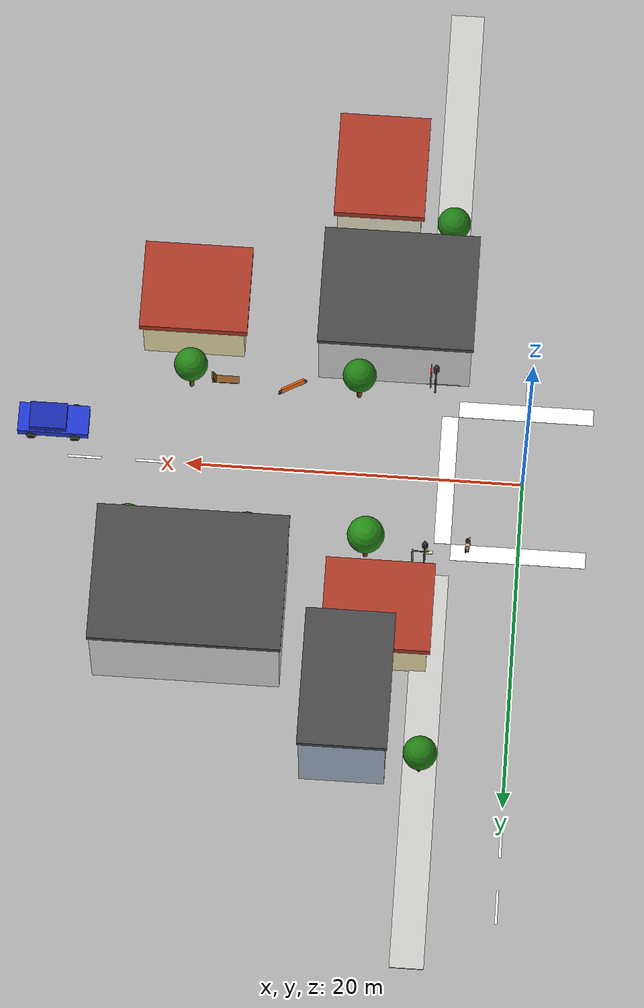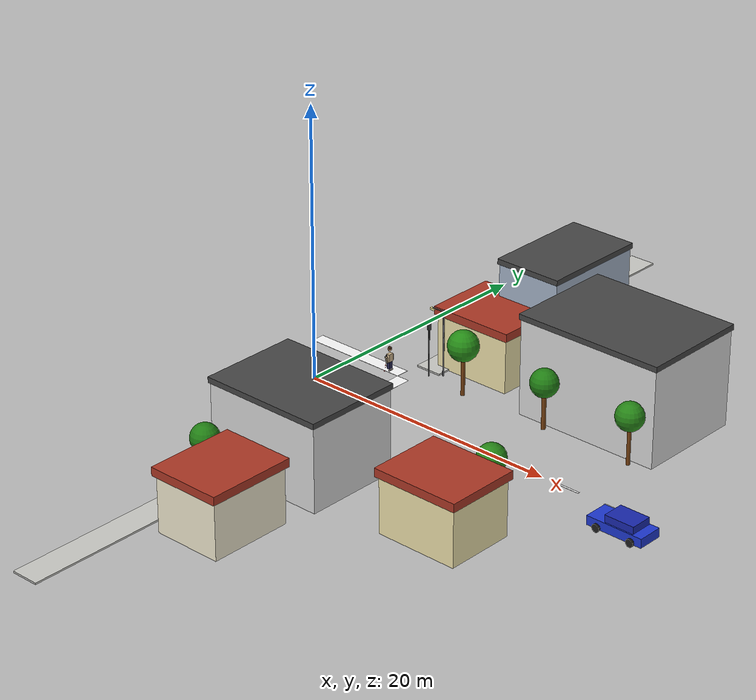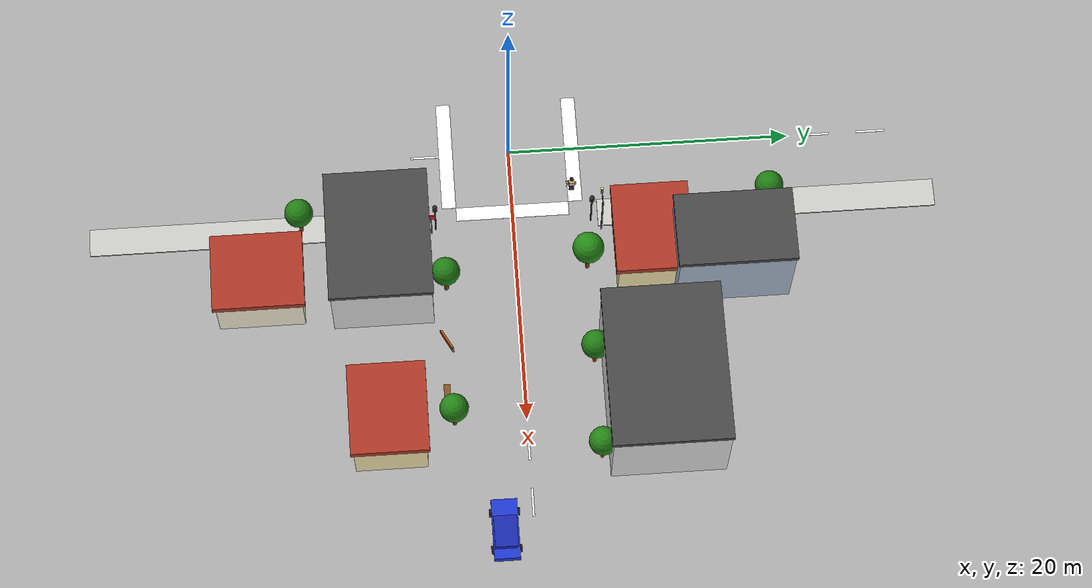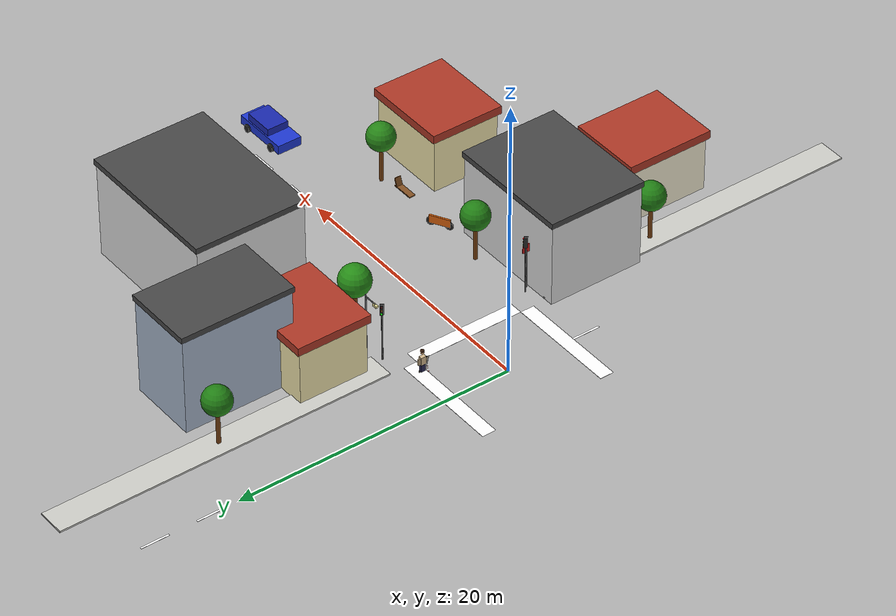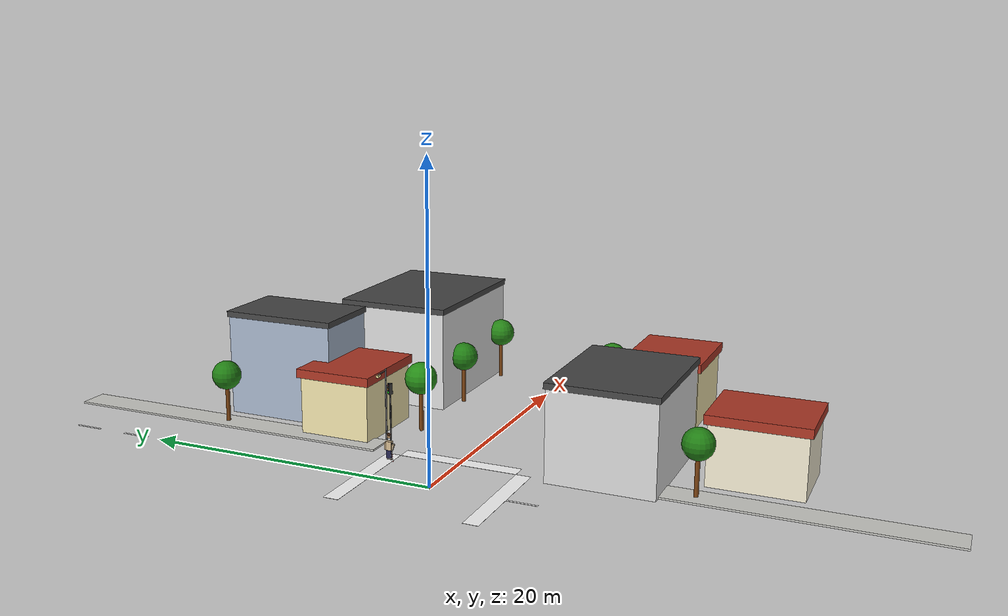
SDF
<sdf version="1.9">
 <world name="smartnav_world">
  <include><uri>https://fuel.gazebosim.org/1.0/OpenRobotics/models/Sun</uri></include>
  <model name="sidewalk_east_S">
   <static>true</static>
   <pose>5 -18 0.06 0 0 0</pose>
   <link name="link">
    <collision name="col"><geometry><box><size>2 24 0.12</size></box></geometry></collision>
    <visual name="vis">
     <geometry><box><size>2 24 0.12</size></box></geometry>
     <material><ambient>0.73 0.73 0.71 1</ambient><diffuse>0.80 0.80 0.78 1</diffuse></material>
    </visual>
   </link>
  </model>
  <model name="sidewalk_east_N">
   <static>true</static>
   <pose>5 18 0.06 0 0 0</pose>
   <link name="link">
    <collision name="col"><geometry><box><size>2 24 0.12</size></box></geometry></collision>
    <visual name="vis">
     <geometry><box><size>2 24 0.12</size></box></geometry>
     <material><ambient>0.73 0.73 0.71 1</ambient><diffuse>0.80 0.80 0.78 1</diffuse></material>
    </visual>
   </link>
  </model>
  <model name="dm_e1">
   <static>true</static>
   <pose>6  0 0.05 0 0 0</pose>
   <link name="l">
    <visual name="v">
     <geometry><box><size>2 0.15 0.01</size></box></geometry>
     <material><ambient>1 1 1 1</ambient><diffuse>1 1 1 1</diffuse></material>
    </visual>
   </link>
  </model>
  <model name="dm_e2">
   <static>true</static>
   <pose>10 0 0.05 0 0 0</pose>
   <link name="l">
    <visual name="v">
     <geometry><box><size>2 0.15 0.01</size></box></geometry>
     <material><ambient>1 1 1 1</ambient><diffuse>1 1 1 1</diffuse></material>
    </visual>
   </link>
  </model>
  <model name="dm_e3">
   <static>true</static>
   <pose>14 0 0.05 0 0 0</pose>
   <link name="l">
    <visual name="v">
     <geometry><box><size>2 0.15 0.01</size></box></geometry>
     <material><ambient>1 1 1 1</ambient><diffuse>1 1 1 1</diffuse></material>
    </visual>
   </link>
  </model>
  <model name="dm_e4">
   <static>true</static>
   <pose>18 0 0.05 0 0 0</pose>
   <link name="l">
    <visual name="v">
     <geometry><box><size>2 0.15 0.01</size></box></geometry>
     <material><ambient>1 1 1 1</ambient><diffuse>1 1 1 1</diffuse></material>
    </visual>
   </link>
  </model>
  <model name="dm_e5">
   <static>true</static>
   <pose>22 0 0.05 0 0 0</pose>
   <link name="l">
    <visual name="v">
     <geometry><box><size>2 0.15 0.01</size></box></geometry>
     <material><ambient>1 1 1 1</ambient><diffuse>1 1 1 1</diffuse></material>
    </visual>
   </link>
  </model>
  <model name="dm_e6">
   <static>true</static>
   <pose>26 0 0.05 0 0 0</pose>
   <link name="l">
    <visual name="v">
     <geometry><box><size>2 0.15 0.01</size></box></geometry>
     <material><ambient>1 1 1 1</ambient><diffuse>1 1 1 1</diffuse></material>
    </visual>
   </link>
  </model>
  <model name="dc_s6">
   <static>true</static>
   <pose>0  -6 0.05 0 0 0</pose>
   <link name="l">
    <visual name="v">
     <geometry><box><size>0.15 2 0.01</size></box></geometry>
     <material><ambient>1 1 1 1</ambient><diffuse>1 1 1 1</diffuse></material>
    </visual>
   </link>
  </model>
  <model name="dc_n1">
   <static>true</static>
   <pose>0  6 0.05 0 0 0</pose>
   <link name="l">
    <visual name="v">
     <geometry><box><size>0.15 2 0.01</size></box></geometry>
     <material><ambient>1 1 1 1</ambient><diffuse>1 1 1 1</diffuse></material>
    </visual>
   </link>
  </model>
  <model name="dc_n2">
   <static>true</static>
   <pose>0 10 0.05 0 0 0</pose>
   <link name="l">
    <visual name="v">
     <geometry><box><size>0.15 2 0.01</size></box></geometry>
     <material><ambient>1 1 1 1</ambient><diffuse>1 1 1 1</diffuse></material>
    </visual>
   </link>
  </model>
  <model name="dc_n3">
   <static>true</static>
   <pose>0 14 0.05 0 0 0</pose>
   <link name="l">
    <visual name="v">
     <geometry><box><size>0.15 2 0.01</size></box></geometry>
     <material><ambient>1 1 1 1</ambient><diffuse>1 1 1 1</diffuse></material>
    </visual>
   </link>
  </model>
  <model name="dc_n4">
   <static>true</static>
   <pose>0 18 0.05 0 0 0</pose>
   <link name="l">
    <visual name="v">
     <geometry><box><size>0.15 2 0.01</size></box></geometry>
     <material><ambient>1 1 1 1</ambient><diffuse>1 1 1 1</diffuse></material>
    </visual>
   </link>
  </model>
  <model name="dc_n5">
   <static>true</static>
   <pose>0 22 0.05 0 0 0</pose>
   <link name="l">
    <visual name="v">
     <geometry><box><size>0.15 2 0.01</size></box></geometry>
     <material><ambient>1 1 1 1</ambient><diffuse>1 1 1 1</diffuse></material>
    </visual>
   </link>
  </model>
  <model name="dc_n6">
   <static>true</static>
   <pose>0 26 0.05 0 0 0</pose>
   <link name="l">
    <visual name="v">
     <geometry><box><size>0.15 2 0.01</size></box></geometry>
     <material><ambient>1 1 1 1</ambient><diffuse>1 1 1 1</diffuse></material>
    </visual>
   </link>
  </model>
  <model name="crosswalk_east">
   <static>true</static>
   <pose>4.5  0   0.05 0 0 0</pose>
   <link name="l">
    <visual name="v">
     <geometry><box><size>1 8 0.01</size></box></geometry>
     <material><ambient>0.95 0.95 0.95 1</ambient><diffuse>1 1 1 1</diffuse></material>
    </visual>
   </link>
  </model>
  <model name="crosswalk_north">
   <static>true</static>
   <pose>0    4.5 0.05 0 0 0</pose>
   <link name="l">
    <visual name="v">
     <geometry><box><size>8 1 0.01</size></box></geometry>
     <material><ambient>0.95 0.95 0.95 1</ambient><diffuse>1 1 1 1</diffuse></material>
    </visual>
   </link>
  </model>
  <model name="crosswalk_south">
   <static>true</static>
   <pose>0   -4.5 0.05 0 0 0</pose>
   <link name="l">
    <visual name="v">
     <geometry><box><size>8 1 0.01</size></box></geometry>
     <material><ambient>0.95 0.95 0.95 1</ambient><diffuse>1 1 1 1</diffuse></material>
    </visual>
   </link>
  </model>
  <model name="house_n3">
   <static>true</static>
   <pose>8 9.5 0 0 0 0</pose>
   <link name="walls">
    <pose>0 0 2 0 0 0</pose>
    <collision name="col"><geometry><box><size>6 5 4</size></box></geometry></collision>
    <visual name="vis">
     <geometry><box><size>6 5 4</size></box></geometry>
     <material><ambient>0.92 0.87 0.65 1</ambient><diffuse>0.95 0.90 0.68 1</diffuse></material>
    </visual>
   </link>
   <link name="roof">
    <pose>0 0 4.3 0 0 0</pose>
    <visual name="vis">
     <geometry><box><size>6.4 5.4 0.6</size></box></geometry>
     <material><ambient>0.62 0.18 0.12 1</ambient><diffuse>0.68 0.22 0.15 1</diffuse></material>
    </visual>
   </link>
  </model>
  <model name="building_n2">
   <static>true</static>
   <pose>19 9.5 0 0 0 0</pose>
   <link name="walls">
    <pose>0 0 3.5 0 0 0</pose>
    <collision name="col"><geometry><box><size>11 8 7</size></box></geometry></collision>
    <visual name="vis">
     <geometry><box><size>11 8 7</size></box></geometry>
     <material><ambient>0.83 0.83 0.83 1</ambient><diffuse>0.87 0.87 0.87 1</diffuse></material>
    </visual>
   </link>
   <link name="roof">
    <pose>0 0 7.2 0 0 0</pose>
    <visual name="vis">
     <geometry><box><size>11.2 8.2 0.4</size></box></geometry>
     <material><ambient>0.25 0.25 0.25 1</ambient><diffuse>0.28 0.28 0.28 1</diffuse></material>
    </visual>
   </link>
  </model>
  <model name="building_s2">
   <static>true</static>
   <pose>8 -9.5 0 0 0 0</pose>
   <link name="walls">
    <pose>0 0 3 0 0 0</pose>
    <collision name="col"><geometry><box><size>9 7 6</size></box></geometry></collision>
    <visual name="vis">
     <geometry><box><size>9 7 6</size></box></geometry>
     <material><ambient>0.82 0.82 0.82 1</ambient><diffuse>0.86 0.86 0.86 1</diffuse></material>
    </visual>
   </link>
   <link name="roof">
    <pose>0 0 6.2 0 0 0</pose>
    <visual name="vis">
     <geometry><box><size>9.2 7.2 0.4</size></box></geometry>
     <material><ambient>0.25 0.25 0.25 1</ambient><diffuse>0.28 0.28 0.28 1</diffuse></material>
    </visual>
   </link>
  </model>
  <model name="house_s3">
   <static>true</static>
   <pose>20 -9.5 0 0 0 0</pose>
   <link name="walls">
    <pose>0 0 2 0 0 0</pose>
    <collision name="col"><geometry><box><size>6 5 4</size></box></geometry></collision>
    <visual name="vis">
     <geometry><box><size>6 5 4</size></box></geometry>
     <material><ambient>0.92 0.87 0.65 1</ambient><diffuse>0.95 0.90 0.68 1</diffuse></material>
    </visual>
   </link>
   <link name="roof">
    <pose>0 0 4.3 0 0 0</pose>
    <visual name="vis">
     <geometry><box><size>6.4 5.4 0.6</size></box></geometry>
     <material><ambient>0.62 0.18 0.12 1</ambient><diffuse>0.68 0.22 0.15 1</diffuse></material>
    </visual>
   </link>
  </model>
  <model name="house_e1">
   <static>true</static>
   <pose>9.5 -18 0 0 0 0</pose>
   <link name="walls">
    <pose>0 0 2 0 0 0</pose>
    <collision name="col"><geometry><box><size>5 6 4</size></box></geometry></collision>
    <visual name="vis">
     <geometry><box><size>5 6 4</size></box></geometry>
     <material><ambient>0.94 0.90 0.80 1</ambient><diffuse>0.96 0.93 0.83 1</diffuse></material>
    </visual>
   </link>
   <link name="roof">
    <pose>0 0 4.3 0 0 0</pose>
    <visual name="vis">
     <geometry><box><size>5.4 6.4 0.6</size></box></geometry>
     <material><ambient>0.62 0.18 0.12 1</ambient><diffuse>0.68 0.22 0.15 1</diffuse></material>
    </visual>
   </link>
  </model>
  <model name="building_e1">
   <static>true</static>
   <pose>9.5 15 0 0 0 0</pose>
   <link name="walls">
    <pose>0 0 3.5 0 0 0</pose>
    <collision name="col"><geometry><box><size>5 8 7</size></box></geometry></collision>
    <visual name="vis">
     <geometry><box><size>5 8 7</size></box></geometry>
     <material><ambient>0.62 0.68 0.75 1</ambient><diffuse>0.66 0.72 0.80 1</diffuse></material>
    </visual>
   </link>
   <link name="roof">
    <pose>0 0 7.2 0 0 0</pose>
    <visual name="vis">
     <geometry><box><size>5.2 8.2 0.4</size></box></geometry>
     <material><ambient>0.25 0.25 0.25 1</ambient><diffuse>0.28 0.28 0.28 1</diffuse></material>
    </visual>
   </link>
  </model>
  <model name="tree_n4">
   <static>true</static>
   <pose>9 5 0 0 0 0</pose>
   <link name="trunk">
    <pose>0 0 1.3 0 0 0</pose>
    <collision name="col">
     <geometry><cylinder><radius>0.14</radius><length>2.6</length></cylinder></geometry>
    </collision>
    <visual name="vis">
     <geometry><cylinder><radius>0.14</radius><length>2.6</length></cylinder></geometry>
     <material><ambient>0.42 0.22 0.06 1</ambient><diffuse>0.48 0.26 0.07 1</diffuse></material>
    </visual>
   </link>
   <link name="canopy">
    <pose>0 0 3.7 0 0 0</pose>
    <collision name="col"><geometry><sphere><radius>1.1</radius></sphere></geometry></collision>
    <visual name="vis">
     <geometry><sphere><radius>1.1</radius></sphere></geometry>
     <material><ambient>0.12 0.48 0.08 1</ambient><diffuse>0.15 0.55 0.09 1</diffuse></material>
    </visual>
   </link>
  </model>
  <model name="tree_n5">
   <static>true</static>
   <pose>16 5 0 0 0 0</pose>
   <link name="trunk">
    <pose>0 0 1.2 0 0 0</pose>
    <collision name="col">
     <geometry><cylinder><radius>0.15</radius><length>2.4</length></cylinder></geometry>
    </collision>
    <visual name="vis">
     <geometry><cylinder><radius>0.15</radius><length>2.4</length></cylinder></geometry>
     <material><ambient>0.42 0.22 0.06 1</ambient><diffuse>0.48 0.26 0.07 1</diffuse></material>
    </visual>
   </link>
   <link name="canopy">
    <pose>0 0 3.4 0 0 0</pose>
    <collision name="col"><geometry><sphere><radius>1.0</radius></sphere></geometry></collision>
    <visual name="vis">
     <geometry><sphere><radius>1.0</radius></sphere></geometry>
     <material><ambient>0.10 0.42 0.07 1</ambient><diffuse>0.13 0.50 0.08 1</diffuse></material>
    </visual>
   </link>
  </model>
  <model name="tree_n6">
   <static>true</static>
   <pose>23 5 0 0 0 0</pose>
   <link name="trunk">
    <pose>0 0 1.25 0 0 0</pose>
    <collision name="col">
     <geometry><cylinder><radius>0.13</radius><length>2.5</length></cylinder></geometry>
    </collision>
    <visual name="vis">
     <geometry><cylinder><radius>0.13</radius><length>2.5</length></cylinder></geometry>
     <material><ambient>0.42 0.22 0.06 1</ambient><diffuse>0.48 0.26 0.07 1</diffuse></material>
    </visual>
   </link>
   <link name="canopy">
    <pose>0 0 3.5 0 0 0</pose>
    <collision name="col"><geometry><sphere><radius>1.0</radius></sphere></geometry></collision>
    <visual name="vis">
     <geometry><sphere><radius>1.0</radius></sphere></geometry>
     <material><ambient>0.12 0.45 0.08 1</ambient><diffuse>0.15 0.52 0.09 1</diffuse></material>
    </visual>
   </link>
  </model>
  <model name="tree_s3">
   <static>true</static>
   <pose>10 -5 0 0 0 0</pose>
   <link name="trunk">
    <pose>0 0 1.2 0 0 0</pose>
    <collision name="col">
     <geometry><cylinder><radius>0.15</radius><length>2.4</length></cylinder></geometry>
    </collision>
    <visual name="vis">
     <geometry><cylinder><radius>0.15</radius><length>2.4</length></cylinder></geometry>
     <material><ambient>0.42 0.22 0.06 1</ambient><diffuse>0.48 0.26 0.07 1</diffuse></material>
    </visual>
   </link>
   <link name="canopy">
    <pose>0 0 3.4 0 0 0</pose>
    <collision name="col"><geometry><sphere><radius>1.0</radius></sphere></geometry></collision>
    <visual name="vis">
     <geometry><sphere><radius>1.0</radius></sphere></geometry>
     <material><ambient>0.10 0.42 0.07 1</ambient><diffuse>0.13 0.50 0.08 1</diffuse></material>
    </visual>
   </link>
  </model>
  <model name="tree_s4">
   <static>true</static>
   <pose>20 -5 0 0 0 0</pose>
   <link name="trunk">
    <pose>0 0 1.25 0 0 0</pose>
    <collision name="col">
     <geometry><cylinder><radius>0.13</radius><length>2.5</length></cylinder></geometry>
    </collision>
    <visual name="vis">
     <geometry><cylinder><radius>0.13</radius><length>2.5</length></cylinder></geometry>
     <material><ambient>0.42 0.22 0.06 1</ambient><diffuse>0.48 0.26 0.07 1</diffuse></material>
    </visual>
   </link>
   <link name="canopy">
    <pose>0 0 3.5 0 0 0</pose>
    <collision name="col"><geometry><sphere><radius>1.0</radius></sphere></geometry></collision>
    <visual name="vis">
     <geometry><sphere><radius>1.0</radius></sphere></geometry>
     <material><ambient>0.12 0.45 0.08 1</ambient><diffuse>0.15 0.52 0.09 1</diffuse></material>
    </visual>
   </link>
  </model>
  <model name="tree_c1">
   <static>true</static>
   <pose>5 -15 0 0 0 0</pose>
   <link name="trunk">
    <pose>0 0 1.2 0 0 0</pose>
    <collision name="col">
     <geometry><cylinder><radius>0.14</radius><length>2.4</length></cylinder></geometry>
    </collision>
    <visual name="vis">
     <geometry><cylinder><radius>0.14</radius><length>2.4</length></cylinder></geometry>
     <material><ambient>0.42 0.22 0.06 1</ambient><diffuse>0.48 0.26 0.07 1</diffuse></material>
    </visual>
   </link>
   <link name="canopy">
    <pose>0 0 3.4 0 0 0</pose>
    <collision name="col"><geometry><sphere><radius>1.0</radius></sphere></geometry></collision>
    <visual name="vis">
     <geometry><sphere><radius>1.0</radius></sphere></geometry>
     <material><ambient>0.10 0.42 0.07 1</ambient><diffuse>0.13 0.50 0.08 1</diffuse></material>
    </visual>
   </link>
  </model>
  <model name="tree_c3">
   <static>true</static>
   <pose>5 18 0 0 0 0</pose>
   <link name="trunk">
    <pose>0 0 1.2 0 0 0</pose>
    <collision name="col">
     <geometry><cylinder><radius>0.14</radius><length>2.4</length></cylinder></geometry>
    </collision>
    <visual name="vis">
     <geometry><cylinder><radius>0.14</radius><length>2.4</length></cylinder></geometry>
     <material><ambient>0.42 0.22 0.06 1</ambient><diffuse>0.48 0.26 0.07 1</diffuse></material>
    </visual>
   </link>
   <link name="canopy">
    <pose>0 0 3.4 0 0 0</pose>
    <collision name="col"><geometry><sphere><radius>1.0</radius></sphere></geometry></collision>
    <visual name="vis">
     <geometry><sphere><radius>1.0</radius></sphere></geometry>
     <material><ambient>0.10 0.42 0.07 1</ambient><diffuse>0.13 0.50 0.08 1</diffuse></material>
    </visual>
   </link>
  </model>
  <model name="lamp_NE">
   <static>true</static>
   <pose>6.2 6.2 0 0 0 3.1416</pose>
   <link name="pole">
    <visual name="pole">
     <pose>0 0 2.5 0 0 0</pose>
     <geometry><cylinder><radius>0.055</radius><length>5.0</length></cylinder></geometry>
     <material><ambient>0.40 0.40 0.42 1</ambient><diffuse>0.45 0.45 0.47 1</diffuse></material>
    </visual>
    <visual name="arm">
     <pose>0.5 0 4.85 0 1.5708 0</pose>
     <geometry><cylinder><radius>0.035</radius><length>1.0</length></cylinder></geometry>
     <material><ambient>0.40 0.40 0.42 1</ambient><diffuse>0.45 0.45 0.47 1</diffuse></material>
    </visual>
    <visual name="head">
     <pose>1.0 0 4.75 0 0 0</pose>
     <geometry><box><size>0.38 0.18 0.14</size></box></geometry>
     <material>
      <ambient>0.95 0.90 0.55 1</ambient>
      <diffuse>1.0 0.95 0.65 1</diffuse>
      <emissive>0.5 0.45 0.15 1</emissive>
     </material>
    </visual>
    <collision name="col">
     <pose>0 0 2.5 0 0 0</pose>
     <geometry><cylinder><radius>0.055</radius><length>5.0</length></cylinder></geometry>
    </collision>
   </link>
  </model>
  <model name="lamp_SE">
   <static>true</static>
   <pose>6.2 -6.2 0 0 0 3.1416</pose>
   <link name="pole">
    <visual name="pole">
     <pose>0 0 2.5 0 0 0</pose>
     <geometry><cylinder><radius>0.055</radius><length>5.0</length></cylinder></geometry>
     <material><ambient>0.40 0.40 0.42 1</ambient><diffuse>0.45 0.45 0.47 1</diffuse></material>
    </visual>
    <visual name="arm">
     <pose>0.5 0 4.85 0 1.5708 0</pose>
     <geometry><cylinder><radius>0.035</radius><length>1.0</length></cylinder></geometry>
     <material><ambient>0.40 0.40 0.42 1</ambient><diffuse>0.45 0.45 0.47 1</diffuse></material>
    </visual>
    <visual name="head">
     <pose>1.0 0 4.75 0 0 0</pose>
     <geometry><box><size>0.38 0.18 0.14</size></box></geometry>
     <material>
      <ambient>0.95 0.90 0.55 1</ambient>
      <diffuse>1.0 0.95 0.65 1</diffuse>
      <emissive>0.5 0.45 0.15 1</emissive>
     </material>
    </visual>
    <collision name="col">
     <pose>0 0 2.5 0 0 0</pose>
     <geometry><cylinder><radius>0.055</radius><length>5.0</length></cylinder></geometry>
    </collision>
   </link>
  </model>
  <model name="tl_NE">
   <static>true</static>
   <pose>5.5 5.5 0 0 0 -0.7854</pose>
   <link name="link">
    <visual name="pole">
     <pose>0 0 1.9 0 0 0</pose>
     <geometry><cylinder><radius>0.05</radius><length>3.8</length></cylinder></geometry>
     <material><ambient>0.28 0.28 0.28 1</ambient><diffuse>0.32 0.32 0.32 1</diffuse></material>
    </visual>
    <visual name="box">
     <pose>0 0 3.9 0 0 0</pose>
     <geometry><box><size>0.24 0.24 0.72</size></box></geometry>
     <material><ambient>0.12 0.12 0.12 1</ambient><diffuse>0.18 0.18 0.18 1</diffuse></material>
    </visual>
    <visual name="red">
     <pose>-0.13 0 4.15 0 1.5708 0</pose>
     <geometry><sphere><radius>0.068</radius></sphere></geometry>
     <material><ambient>0.25 0.05 0.05 1</ambient><diffuse>0.30 0.06 0.06 1</diffuse></material>
    </visual>
    <visual name="orange">
     <pose>-0.13 0 3.90 0 1.5708 0</pose>
     <geometry><sphere><radius>0.068</radius></sphere></geometry>
     <material><ambient>0.25 0.12 0.00 1</ambient><diffuse>0.30 0.14 0.00 1</diffuse></material>
    </visual>
    <visual name="green">
     <pose>-0.13 0 3.65 0 1.5708 0</pose>
     <geometry><sphere><radius>0.068</radius></sphere></geometry>
     <material>
      <ambient>0.05 0.85 0.05 1</ambient>
      <diffuse>0.08 0.95 0.08 1</diffuse>
      <emissive>0 0.65 0 1</emissive>
     </material>
    </visual>
    <collision name="col">
     <pose>0 0 1.9 0 0 0</pose>
     <geometry><cylinder><radius>0.05</radius><length>3.8</length></cylinder></geometry>
    </collision>
   </link>
  </model>
  <model name="tl_SE">
   <static>true</static>
   <pose>5.5 -5.5 0 0 0 -2.3562</pose>
   <link name="link">
    <visual name="pole">
     <pose>0 0 1.9 0 0 0</pose>
     <geometry><cylinder><radius>0.05</radius><length>3.8</length></cylinder></geometry>
     <material><ambient>0.28 0.28 0.28 1</ambient><diffuse>0.32 0.32 0.32 1</diffuse></material>
    </visual>
    <visual name="box">
     <pose>0 0 3.9 0 0 0</pose>
     <geometry><box><size>0.24 0.24 0.72</size></box></geometry>
     <material><ambient>0.12 0.12 0.12 1</ambient><diffuse>0.18 0.18 0.18 1</diffuse></material>
    </visual>
    <visual name="red">
     <pose>-0.13 0 4.15 0 1.5708 0</pose>
     <geometry><sphere><radius>0.068</radius></sphere></geometry>
     <material>
      <ambient>0.90 0.05 0.05 1</ambient>
      <diffuse>1.0 0.08 0.08 1</diffuse>
      <emissive>0.80 0 0 1</emissive>
     </material>
    </visual>
    <visual name="orange">
     <pose>-0.13 0 3.90 0 1.5708 0</pose>
     <geometry><sphere><radius>0.068</radius></sphere></geometry>
     <material><ambient>0.25 0.12 0.00 1</ambient><diffuse>0.30 0.14 0.00 1</diffuse></material>
    </visual>
    <visual name="green">
     <pose>-0.13 0 3.65 0 1.5708 0</pose>
     <geometry><sphere><radius>0.068</radius></sphere></geometry>
     <material><ambient>0.05 0.22 0.05 1</ambient><diffuse>0.08 0.28 0.08 1</diffuse></material>
    </visual>
    <collision name="col">
     <pose>0 0 1.9 0 0 0</pose>
     <geometry><cylinder><radius>0.05</radius><length>3.8</length></cylinder></geometry>
    </collision>
   </link>
  </model>
  <model name="sign_1">
   <static>true</static>
   <pose>5.8 -5.8 0 0 0 0</pose>
   <link name="link">
    <visual name="pole">
     <pose>0 0 1.5 0 0 0</pose>
     <geometry><cylinder><radius>0.04</radius><length>3.0</length></cylinder></geometry>
     <material><ambient>0.70 0.70 0.70 1</ambient><diffuse>0.75 0.75 0.75 1</diffuse></material>
    </visual>
    <visual name="panel">
     <pose>0 0 3.1 0 0 0</pose>
     <geometry><box><size>0.06 0.60 0.60</size></box></geometry>
     <material><ambient>0.80 0.10 0.10 1</ambient><diffuse>0.85 0.12 0.12 1</diffuse></material>
    </visual>
    <collision name="col">
     <pose>0 0 1.5 0 0 0</pose>
     <geometry><cylinder><radius>0.04</radius><length>3.0</length></cylinder></geometry>
    </collision>
   </link>
  </model>
  <model name="bike_1">
   <static>true</static>
   <pose>14 -5.2 0.35 0 0 0.5</pose>
   <link name="link">
    <visual name="frame">
     <geometry><box><size>1.50 0.12 0.60</size></box></geometry>
     <material><ambient>0.80 0.35 0.05 1</ambient><diffuse>0.88 0.40 0.06 1</diffuse></material>
    </visual>
    <visual name="wf">
     <pose>0.65 0 -0.18 1.5708 0 0</pose>
     <geometry><cylinder><radius>0.30</radius><length>0.06</length></cylinder></geometry>
     <material><ambient>0.08 0.08 0.08 1</ambient><diffuse>0.12 0.12 0.12 1</diffuse></material>
    </visual>
    <visual name="wr">
     <pose>-0.65 0 -0.18 1.5708 0 0</pose>
     <geometry><cylinder><radius>0.30</radius><length>0.06</length></cylinder></geometry>
     <material><ambient>0.08 0.08 0.08 1</ambient><diffuse>0.12 0.12 0.12 1</diffuse></material>
    </visual>
    <collision name="col"><geometry><box><size>1.50 0.12 0.90</size></box></geometry></collision>
   </link>
  </model>
  <model name="bench_2">
   <static>true</static>
   <pose>18 -5.4 0.22 0 0 3.1416</pose>
   <link name="link">
    <visual name="seat">
     <geometry><box><size>1.6 0.45 0.08</size></box></geometry>
     <material><ambient>0.45 0.28 0.12 1</ambient><diffuse>0.52 0.32 0.14 1</diffuse></material>
    </visual>
    <visual name="back">
     <pose>-0.7 0 0.30 0 -0.35 0</pose>
     <geometry><box><size>0.08 0.45 0.60</size></box></geometry>
     <material><ambient>0.45 0.28 0.12 1</ambient><diffuse>0.52 0.32 0.14 1</diffuse></material>
    </visual>
    <collision name="col"><geometry><box><size>1.6 0.45 0.70</size></box></geometry></collision>
   </link>
  </model>
  <model name="moving_car_B">
   <pose>28 -2 0.54 0 0 3.1416</pose>
   <link name="chassis">
    <inertial>
     <mass>1200</mass>
     <inertia><ixx>400</ixx><ixy>0</ixy><ixz>0</ixz><iyy>1800</iyy><iyz>0</iyz><izz>1800</izz></inertia>
    </inertial>
    <visual name="body">
     <geometry><box><size>4.2 1.8 0.65</size></box></geometry>
     <material>
      <ambient>0.10 0.18 0.75 1</ambient>
      <diffuse>0.12 0.22 0.82 1</diffuse>
      <specular>0.1 0.1 0.3 1</specular>
     </material>
    </visual>
    <visual name="cabin">
     <pose>-0.3 0 0.58 0 0 0</pose>
     <geometry><box><size>2.2 1.6 0.52</size></box></geometry>
     <material><ambient>0.08 0.14 0.62 1</ambient><diffuse>0.10 0.16 0.68 1</diffuse></material>
    </visual>
    <visual name="wfl">
     <pose>1.3  0.95 -0.22 1.5708 0 0</pose>
     <geometry><cylinder><radius>0.28</radius><length>0.20</length></cylinder></geometry>
     <material><ambient>0.08 0.08 0.08 1</ambient><diffuse>0.12 0.12 0.12 1</diffuse></material>
    </visual>
    <visual name="wfr">
     <pose>1.3 -0.95 -0.22 1.5708 0 0</pose>
     <geometry><cylinder><radius>0.28</radius><length>0.20</length></cylinder></geometry>
     <material><ambient>0.08 0.08 0.08 1</ambient><diffuse>0.12 0.12 0.12 1</diffuse></material>
    </visual>
    <visual name="wrl">
     <pose>-1.3  0.95 -0.22 1.5708 0 0</pose>
     <geometry><cylinder><radius>0.28</radius><length>0.20</length></cylinder></geometry>
     <material><ambient>0.08 0.08 0.08 1</ambient><diffuse>0.12 0.12 0.12 1</diffuse></material>
    </visual>
    <visual name="wrr">
     <pose>-1.3 -0.95 -0.22 1.5708 0 0</pose>
     <geometry><cylinder><radius>0.28</radius><length>0.20</length></cylinder></geometry>
     <material><ambient>0.08 0.08 0.08 1</ambient><diffuse>0.12 0.12 0.12 1</diffuse></material>
    </visual>
    <collision name="col"><geometry><box><size>4.2 1.8 1.0</size></box></geometry></collision>
   </link>
   <plugin filename="gz-sim-velocity-control-system" name="gz::sim::systems::VelocityControl">
    <initial_linear>7.0 0 0</initial_linear>
    <initial_angular>0 0 0</initial_angular>
   </plugin>
  </model>
  <model name="blind_person">
   <static>true</static>
   <pose>3 4.3 0 0 0 -1.5708</pose>
   <link name="body">
    <visual name="legs">
     <pose>0 0 0.46 0 0 0</pose>
     <geometry><box><size>0.32 0.22 0.56</size></box></geometry>
     <material><ambient>0.12 0.12 0.28 1</ambient><diffuse>0.15 0.15 0.32 1</diffuse></material>
    </visual>
    <collision name="col_legs">
     <pose>0 0 0.46 0 0 0</pose>
     <geometry><box><size>0.32 0.22 0.56</size></box></geometry>
    </collision>
    <visual name="shoe_l">
     <pose>0.07 0.09 0.07 0 0 0</pose>
     <geometry><box><size>0.24 0.10 0.10</size></box></geometry>
     <material><ambient>0.08 0.06 0.04 1</ambient><diffuse>0.10 0.08 0.06 1</diffuse></material>
    </visual>
    <visual name="shoe_r">
     <pose>-0.07 0.09 0.07 0 0 0</pose>
     <geometry><box><size>0.24 0.10 0.10</size></box></geometry>
     <material><ambient>0.08 0.06 0.04 1</ambient><diffuse>0.10 0.08 0.06 1</diffuse></material>
    </visual>
    <visual name="torso">
     <pose>0 0 1.01 0 0 0</pose>
     <geometry><box><size>0.38 0.26 0.58</size></box></geometry>
     <material><ambient>0.78 0.68 0.52 1</ambient><diffuse>0.82 0.72 0.56 1</diffuse></material>
    </visual>
    <collision name="col_torso">
     <pose>0 0 1.01 0 0 0</pose>
     <geometry><box><size>0.38 0.26 0.58</size></box></geometry>
    </collision>
    <visual name="arm_l">
     <pose>0.26 0 0.92 0 0.30 0</pose>
     <geometry><box><size>0.12 0.11 0.48</size></box></geometry>
     <material><ambient>0.78 0.68 0.52 1</ambient><diffuse>0.82 0.72 0.56 1</diffuse></material>
    </visual>
    <visual name="arm_r">
     <pose>-0.26 0 0.95 0 0 0</pose>
     <geometry><box><size>0.12 0.11 0.46</size></box></geometry>
     <material><ambient>0.78 0.68 0.52 1</ambient><diffuse>0.82 0.72 0.56 1</diffuse></material>
    </visual>
    <visual name="head">
     <pose>0 0 1.62 0 0 0</pose>
     <geometry><sphere><radius>0.13</radius></sphere></geometry>
     <material><ambient>0.85 0.65 0.45 1</ambient><diffuse>0.90 0.70 0.50 1</diffuse></material>
    </visual>
    <collision name="col_head">
     <pose>0 0 1.62 0 0 0</pose>
     <geometry><sphere><radius>0.13</radius></sphere></geometry>
    </collision>
    <visual name="hair">
     <pose>0 0 1.72 0 0 0</pose>
     <geometry><sphere><radius>0.135</radius></sphere></geometry>
     <material><ambient>0.15 0.08 0.03 1</ambient><diffuse>0.20 0.10 0.04 1</diffuse></material>
    </visual>
    <visual name="glasses">
     <pose>0.115 0 1.64 0 1.5708 0</pose>
     <geometry><cylinder><radius>0.05</radius><length>0.025</length></cylinder></geometry>
     <material><ambient>0.05 0.05 0.05 1</ambient><diffuse>0.05 0.05 0.05 1</diffuse></material>
    </visual>
    <visual name="cane_shaft">
     <pose>0.28 -0.10 0.72 0 0.25 0</pose>
     <geometry><cylinder><radius>0.014</radius><length>1.10</length></cylinder></geometry>
     <material>
      <ambient>0.95 0.95 0.95 1</ambient>
      <diffuse>1.00 1.00 1.00 1</diffuse>
      <specular>0.4 0.4 0.4 1</specular>
     </material>
    </visual>
    <visual name="cane_band1">
     <pose>0.31 -0.125 0.32 0 0.25 0</pose>
     <geometry><cylinder><radius>0.016</radius><length>0.04</length></cylinder></geometry>
     <material><ambient>0.90 0.05 0.05 1</ambient><diffuse>0.95 0.08 0.08 1</diffuse></material>
    </visual>
    <visual name="cane_band2">
     <pose>0.30 -0.118 0.47 0 0.25 0</pose>
     <geometry><cylinder><radius>0.016</radius><length>0.04</length></cylinder></geometry>
     <material><ambient>0.90 0.05 0.05 1</ambient><diffuse>0.95 0.08 0.08 1</diffuse></material>
    </visual>
    <visual name="cane_tip">
     <pose>0.355 -0.155 0.04 0 0 0</pose>
     <geometry><sphere><radius>0.028</radius></sphere></geometry>
     <material>
      <ambient>0.90 0.05 0.05 1</ambient>
      <diffuse>0.95 0.08 0.08 1</diffuse>
      <specular>0.3 0.1 0.1 1</specular>
     </material>
    </visual>
    <visual name="cane_handle">
     <pose>0.245 -0.080 1.18 0 0.25 0</pose>
     <geometry><box><size>0.06 0.04 0.12</size></box></geometry>
     <material><ambient>0.20 0.20 0.20 1</ambient><diffuse>0.25 0.25 0.25 1</diffuse></material>
    </visual>
    <visual name="smartnav_sensor">
     <pose>0.246 -0.060 1.22 0 0.25 0</pose>
     <geometry><box><size>0.04 0.02 0.04</size></box></geometry>
     <material>
      <ambient>0.05 0.20 0.70 1</ambient>
      <diffuse>0.08 0.25 0.80 1</diffuse>
      <specular>0.3 0.3 0.6 1</specular>
      <emissive>0.01 0.05 0.20 1</emissive>
     </material>
    </visual>
   </link>
  </model>
 </world>
</sdf>
